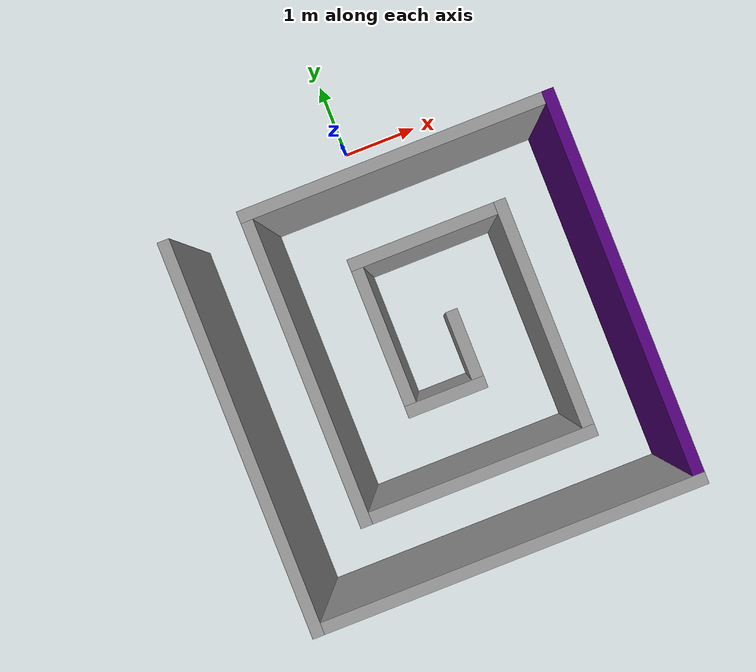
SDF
<?xml version='1.0'?>
<sdf version='1.7'>
  <model name='building_template_model'>
    <pose>0.085 -2.7875 0 0 -0 0</pose>
    <link name='Wall_0'>
      <collision name='Wall_0_Collision'>
        <geometry>
          <box>
            <size>5 0.15 2.5</size>
          </box>
        </geometry>
        <pose>0 0 1.25 0 -0 0</pose>
      </collision>
      <visual name='Wall_0_Visual'>
        <pose>0 0 1.25 0 -0 0</pose>
        <geometry>
          <box>
            <size>5 0.15 2.5</size>
          </box>
        </geometry>
        <material>
          <script>
            <uri>file://media/materials/scripts/gazebo.material</uri>
            <name>Gazebo/Grey</name>
          </script>
          <ambient>1 1 1 1</ambient>
        </material>
        <meta>
          <layer>0</layer>
        </meta>
      </visual>
      <pose>-2.425 -0.2875 0 0 -0 1.5708</pose>
    </link>
    <link name='Wall_10'>
      <collision name='Wall_10_Collision'>
        <geometry>
          <box>
            <size>1 0.15 2.5</size>
          </box>
        </geometry>
        <pose>0 0 1.25 0 -0 0</pose>
      </collision>
      <visual name='Wall_10_Visual'>
        <pose>0 0 1.25 0 -0 0</pose>
        <geometry>
          <box>
            <size>1 0.15 2.5</size>
          </box>
        </geometry>
        <material>
          <script>
            <uri>file://media/materials/scripts/gazebo.material</uri>
            <name>Gazebo/Grey</name>
          </script>
          <ambient>1 1 1 1</ambient>
        </material>
        <meta>
          <layer>0</layer>
        </meta>
      </visual>
      <pose>-0 -0.7125 0 0 -0 0</pose>
    </link>
    <link name='Wall_12'>
      <collision name='Wall_12_Collision'>
        <geometry>
          <box>
            <size>1 0.15 2.5</size>
          </box>
        </geometry>
        <pose>0 0 1.25 0 -0 0</pose>
      </collision>
      <visual name='Wall_12_Visual'>
        <pose>0 0 1.25 0 -0 0</pose>
        <geometry>
          <box>
            <size>1 0.15 2.5</size>
          </box>
        </geometry>
        <material>
          <script>
            <uri>file://media/materials/scripts/gazebo.material</uri>
            <name>Gazebo/Grey</name>
          </script>
          <ambient>1 1 1 1</ambient>
        </material>
        <meta>
          <layer>0</layer>
        </meta>
      </visual>
      <pose>0.425 -0.2875 0 0 -0 1.5708</pose>
    </link>
    <link name='Wall_2'>
      <collision name='Wall_2_Collision'>
        <geometry>
          <box>
            <size>5 0.15 2.5</size>
          </box>
        </geometry>
        <pose>0 0 1.25 0 -0 0</pose>
      </collision>
      <visual name='Wall_2_Visual'>
        <pose>0 0 1.25 0 -0 0</pose>
        <geometry>
          <box>
            <size>5 0.15 2.5</size>
          </box>
        </geometry>
        <material>
          <script>
            <uri>file://media/materials/scripts/gazebo.material</uri>
            <name>Gazebo/Grey</name>
          </script>
          <ambient>1 1 1 1</ambient>
        </material>
        <meta>
          <layer>0</layer>
        </meta>
      </visual>
      <pose>-0 -2.7125 0 0 -0 0</pose>
    </link>
    <link name='Wall_3'>
      <collision name='Wall_3_Collision'>
        <geometry>
          <box>
            <size>5 0.15 2.5</size>
          </box>
        </geometry>
        <pose>0 0 1.25 0 -0 0</pose>
      </collision>
      <visual name='Wall_3_Visual'>
        <pose>0 0 1.25 0 -0 0</pose>
        <geometry>
          <box>
            <size>5 0.15 2.5</size>
          </box>
        </geometry>
        <material>
          <script>
            <uri>file://media/materials/scripts/gazebo.material</uri>
            <name>Gazebo/Grey</name>
          </script>
          <ambient>0.333333 0 0.498039 1</ambient>
        </material>
        <meta>
          <layer>0</layer>
        </meta>
      </visual>
      <pose>2.425 -0.2875 0 0 -0 1.5708</pose>
    </link>
    <link name='Wall_4'>
      <collision name='Wall_4_Collision'>
        <geometry>
          <box>
            <size>4 0.15 2.5</size>
          </box>
        </geometry>
        <pose>0 0 1.25 0 -0 0</pose>
      </collision>
      <visual name='Wall_4_Visual'>
        <pose>0 0 1.25 0 -0 0</pose>
        <geometry>
          <box>
            <size>4 0.15 2.5</size>
          </box>
        </geometry>
        <material>
          <script>
            <uri>file://media/materials/scripts/gazebo.material</uri>
            <name>Gazebo/Grey</name>
          </script>
          <ambient>1 1 1 1</ambient>
        </material>
        <meta>
          <layer>0</layer>
        </meta>
      </visual>
      <pose>0.5 2.1375 0 0 -0 3.14159</pose>
    </link>
    <link name='Wall_5'>
      <collision name='Wall_5_Collision'>
        <geometry>
          <box>
            <size>4 0.15 2.5</size>
          </box>
        </geometry>
        <pose>0 0 1.25 0 -0 0</pose>
      </collision>
      <visual name='Wall_5_Visual'>
        <pose>0 0 1.25 0 -0 0</pose>
        <geometry>
          <box>
            <size>4 0.15 2.5</size>
          </box>
        </geometry>
        <material>
          <script>
            <uri>file://media/materials/scripts/gazebo.material</uri>
            <name>Gazebo/Grey</name>
          </script>
          <ambient>1 1 1 1</ambient>
        </material>
        <meta>
          <layer>0</layer>
        </meta>
      </visual>
      <pose>-1.425 0.2125 0 0 -0 -1.5708</pose>
    </link>
    <link name='Wall_6'>
      <collision name='Wall_6_Collision'>
        <geometry>
          <box>
            <size>3 0.15 2.5</size>
          </box>
        </geometry>
        <pose>0 0 1.25 0 -0 0</pose>
      </collision>
      <visual name='Wall_6_Visual'>
        <pose>0 0 1.25 0 -0 0</pose>
        <geometry>
          <box>
            <size>3 0.15 2.5</size>
          </box>
        </geometry>
        <material>
          <script>
            <uri>file://media/materials/scripts/gazebo.material</uri>
            <name>Gazebo/Grey</name>
          </script>
          <ambient>1 1 1 1</ambient>
        </material>
        <meta>
          <layer>0</layer>
        </meta>
      </visual>
      <pose>-0 -1.7125 0 0 -0 0</pose>
    </link>
    <link name='Wall_7'>
      <collision name='Wall_7_Collision'>
        <geometry>
          <box>
            <size>3 0.15 2.5</size>
          </box>
        </geometry>
        <pose>0 0 1.25 0 -0 0</pose>
      </collision>
      <visual name='Wall_7_Visual'>
        <pose>0 0 1.25 0 -0 0</pose>
        <geometry>
          <box>
            <size>3 0.15 2.5</size>
          </box>
        </geometry>
        <material>
          <script>
            <uri>file://media/materials/scripts/gazebo.material</uri>
            <name>Gazebo/Grey</name>
          </script>
          <ambient>1 1 1 1</ambient>
        </material>
        <meta>
          <layer>0</layer>
        </meta>
      </visual>
      <pose>1.425 -0.2875 0 0 -0 1.5708</pose>
    </link>
    <link name='Wall_8'>
      <collision name='Wall_8_Collision'>
        <geometry>
          <box>
            <size>2 0.15 2.5</size>
          </box>
        </geometry>
        <pose>0 0 1.25 0 -0 0</pose>
      </collision>
      <visual name='Wall_8_Visual'>
        <pose>0 0 1.25 0 -0 0</pose>
        <geometry>
          <box>
            <size>2 0.15 2.5</size>
          </box>
        </geometry>
        <material>
          <script>
            <uri>file://media/materials/scripts/gazebo.material</uri>
            <name>Gazebo/Grey</name>
          </script>
          <ambient>1 1 1 1</ambient>
        </material>
        <meta>
          <layer>0</layer>
        </meta>
      </visual>
      <pose>0.5 1.1375 0 0 -0 3.14159</pose>
    </link>
    <link name='Wall_9'>
      <collision name='Wall_9_Collision'>
        <geometry>
          <box>
            <size>2 0.15 2.5</size>
          </box>
        </geometry>
        <pose>0 0 1.25 0 -0 0</pose>
      </collision>
      <visual name='Wall_9_Visual'>
        <pose>0 0 1.25 0 -0 0</pose>
        <geometry>
          <box>
            <size>2 0.15 2.5</size>
          </box>
        </geometry>
        <material>
          <script>
            <uri>file://media/materials/scripts/gazebo.material</uri>
            <name>Gazebo/Grey</name>
          </script>
          <ambient>1 1 1 1</ambient>
        </material>
        <meta>
          <layer>0</layer>
        </meta>
      </visual>
      <pose>-0.425 0.2125 0 0 -0 -1.5708</pose>
    </link>
    <static>1</static>
  </model>
</sdf>
